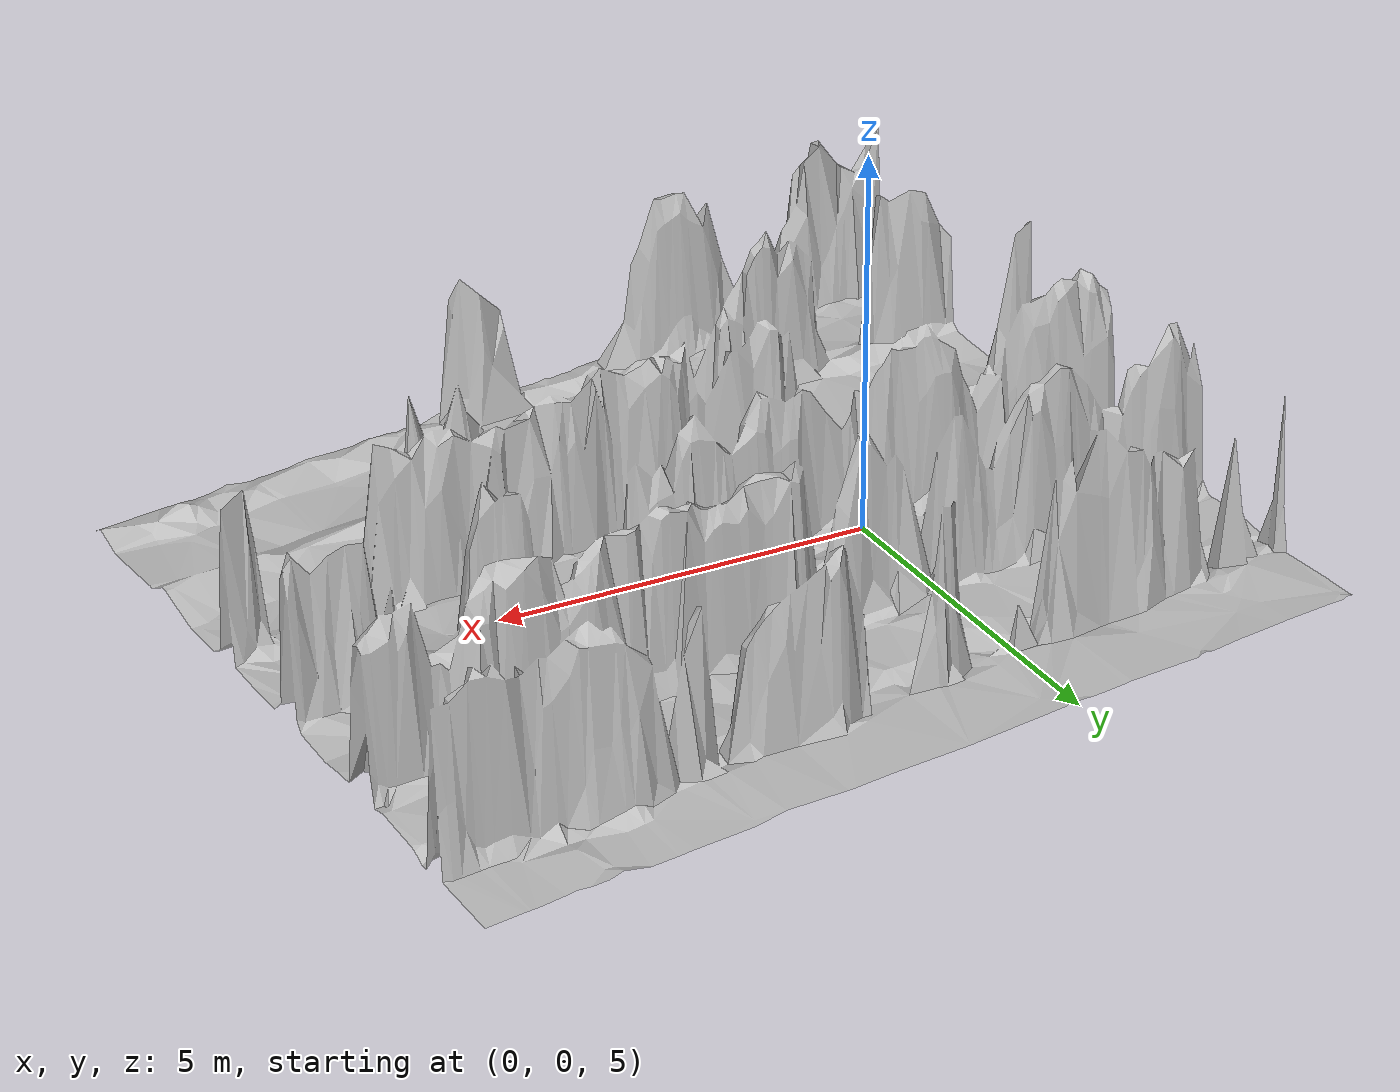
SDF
<?xml version="1.0" ?>
<sdf version="1.10">
    <model name="map_150_60">
        <link name="map_150_60_link">
            <visual name="map_150_60_visual">
                <geometry>
                    <mesh>
                        <uri>meshes/visual/map_150_60.obj</uri>
                    </mesh>
                </geometry>
            </visual>
            <collision name="map_150_60_collision">
                <surface>
                    <friction>
                        <ode>
                            <mu>2.316343837943928</mu>
                            <mu2>2.316343837943928</mu2>
                        </ode>
                        <bullet>
                            <friction>2.316343837943928</friction>
                            <friction2>2.316343837943928</friction2>
                        </bullet>
                    </friction>
                </surface>
                <geometry>
                    <mesh>
                        <uri>meshes/visual/map_150_60.obj</uri>
                    </mesh>
                </geometry>
            </collision>
        </link>
        <static>True</static>
    </model>
</sdf>
